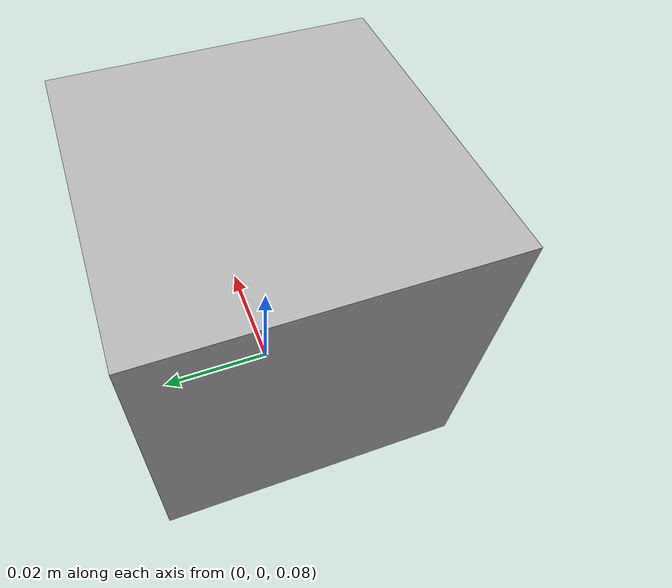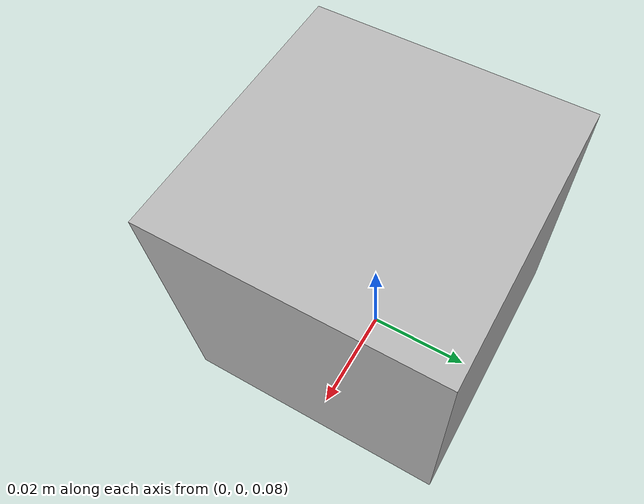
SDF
<sdf version='1.6'>
  <world name='default'>
    <model name='unit_box_0'>
      <pose>0 0 0.107 0 0 0</pose>
      <link name='unit_box_0::link'>
        <inertial>
          <mass>0.1</mass>
          <inertia>
            <ixx>1.0</ixx>
            <ixy>0</ixy>
            <ixz>0</ixz>
            <iyy>1.0</iyy>
            <iyz>0</iyz>
            <izz>1.0</izz>
          </inertia>
        </inertial>
        <collision name='collision'>
          <geometry>
            <box>
              <size>0.05 0.05 0.05</size>
            </box>
          </geometry>
        </collision>
        <visual name='visual'>
          <geometry>
          <mesh>
            <scale>0.05 0.05 0.05</scale>
            <uri>cube.obj</uri>
          </mesh>
        </geometry>
        </visual>
      </link>
    </model>
  </world>
</sdf>
